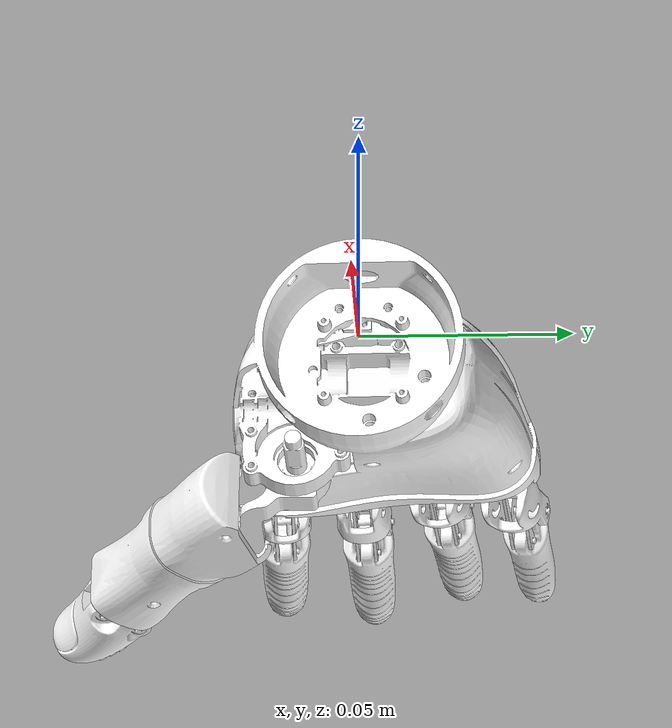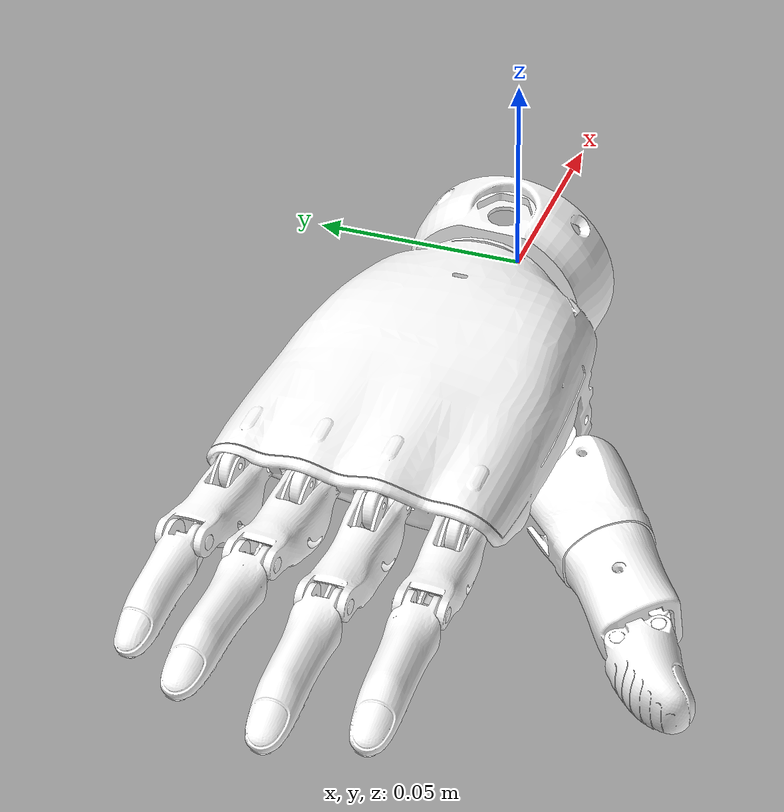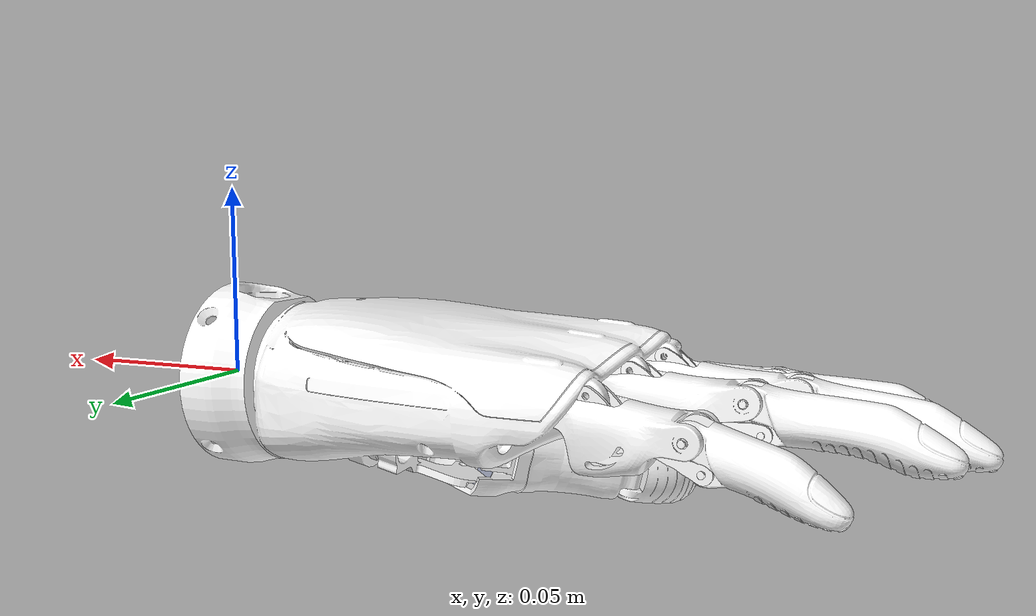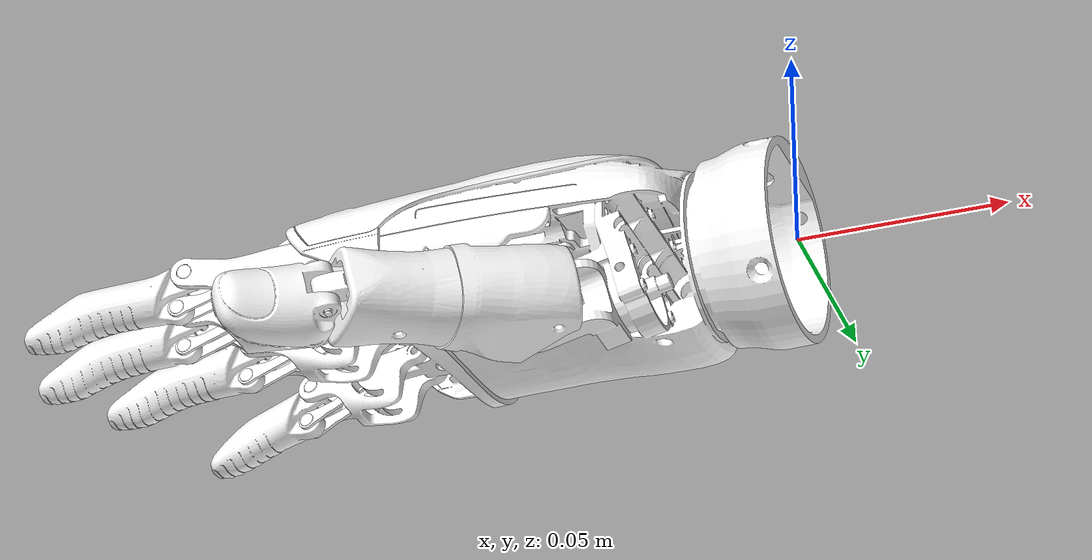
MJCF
<mujoco model="rohand_right">
  <compiler angle="radian"/>
  <asset>
    <mesh name="base_link" content_type="model/stl" file="../assets/meshes_r/base_link.STL"/>
    <mesh name="if_proximal_link" content_type="model/stl" file="../assets/meshes_r/if_proximal_link.STL"/>
    <mesh name="if_distal_link" content_type="model/stl" file="../assets/meshes_r/if_distal_link.STL"/>
    <mesh name="if_connecting_link" content_type="model/stl" file="../assets/meshes_r/if_connecting_link.STL"/>
    <mesh name="mf_proximal_link" content_type="model/stl" file="../assets/meshes_r/mf_proximal_link.STL"/>
    <mesh name="mf_distal_link" content_type="model/stl" file="../assets/meshes_r/mf_distal_link.STL"/>
    <mesh name="mf_connecting_link" content_type="model/stl" file="../assets/meshes_r/mf_connecting_link.STL"/>
    <mesh name="rf_proximal_link" content_type="model/stl" file="../assets/meshes_r/rf_proximal_link.STL"/>
    <mesh name="rf_distal_link" content_type="model/stl" file="../assets/meshes_r/rf_distal_link.STL"/>
    <mesh name="rf_connecting_link" content_type="model/stl" file="../assets/meshes_r/rf_connecting_link.STL"/>
    <mesh name="lf_proximal_link" content_type="model/stl" file="../assets/meshes_r/lf_proximal_link.STL"/>
    <mesh name="lf_distal_link" content_type="model/stl" file="../assets/meshes_r/lf_distal_link.STL"/>
    <mesh name="lf_connecting_link" content_type="model/stl" file="../assets/meshes_r/lf_connecting_link.STL"/>
    <mesh name="th_root_link" content_type="model/stl" file="../assets/meshes_r/th_root_link.STL"/>
    <mesh name="th_slider_connecting_link" content_type="model/stl" file="../assets/meshes_r/th_slider_connecting_link.STL"/>
    <mesh name="th_slider_link" content_type="model/stl" file="../assets/meshes_r/th_slider_link.STL"/>
    <mesh name="th_connecting_link" content_type="model/stl" file="../assets/meshes_r/th_connecting_link.STL"/>
    <mesh name="th_distal_link" content_type="model/stl" file="../assets/meshes_r/th_distal_link.STL"/>
    <mesh name="th_proximal_link" content_type="model/stl" file="../assets/meshes_r/th_proximal_link.STL"/>
  </asset>

  <worldbody>
    <body name="base_link" gravcomp="1">
      <geom type="mesh" rgba="1 1 1 1" mesh="base_link"/>
    </body>
    <body name="if_proximal_link" pos="-0.10885 -0.022559 0.0030149">
      <inertial pos="-0.0160095 -0.000349492 -0.00260444" quat="-0.0440493 0.736774 -0.0160061 0.674512" mass="0.0205198" diaginertia="2.03139e-07 1.89822e-07 7.44479e-08"/>
      <joint name="if_proximal_link" pos="0 0 0" axis="0.0358601 -0.995591 -0.0866701" damping="0.03"/>
      <geom type="mesh" rgba="1 1 1 1" mesh="if_proximal_link"/>
      <body name="if_distal_link" pos="-0.03264 -0.00084447 -0.00035932">
        <inertial pos="-0.0196284 -0.000640275 -0.00436104" quat="0.510597 0.471485 0.442294 0.566893" mass="0.0375163" diaginertia="4.17223e-07 4.15603e-07 5.91796e-08"/>
        <joint name="if_distal_link" pos="0 0 0" axis="-0.0358601 0.995591 0.0866701" damping="0.01"/>
        <geom type="mesh" rgba="1 1 1 1" mesh="if_distal_link"/>
      </body>
    </body>
    <body name="if_connecting_link" pos="-0.11575 -0.023152 0.006969">
      <inertial pos="-0.0140289 5.77054e-05 -0.00646747" quat="0.55484 0.417399 0.381139 0.610462" mass="0.00266926" diaginertia="1.97462e-08 1.95007e-08 2.63265e-10"/>
      <joint name="if_connecting_link" pos="0 0 0" axis="-0.0358601 0.995591 0.0866701"/>
      <geom type="mesh" rgba="1 1 1 1" mesh="if_connecting_link"/>
    </body>
    <body name="mf_proximal_link" pos="-0.11096 -0.0042498 0.0069142">
      <inertial pos="-0.0184905 0.000627935 -0.00413938" quat="0.0109854 0.704464 -0.0129311 0.709537" mass="0.0248817" diaginertia="2.93155e-07 2.84444e-07 9.05457e-08"/>
      <joint name="mf_proximal_link" pos="0 0 0" axis="-0.0341809 -0.999416 0.000165019" damping="0.03"/>
      <geom type="mesh" rgba="1 1 1 1" mesh="mf_proximal_link"/>
      <body name="mf_distal_link" pos="-0.037403 0.0015832 -0.0023459">
        <inertial pos="-0.0193516 0.000182975 -0.00549428" quat="0.560778 0.446398 0.435344 0.544731" mass="0.0375164" diaginertia="4.17224e-07 4.15603e-07 5.91808e-08"/>
        <joint name="mf_distal_link" pos="0 0 0" axis="0.0255421 0.999673 0.0010432" damping="0.01"/>
        <geom type="mesh" rgba="1 1 1 1" mesh="mf_distal_link"/>
      </body>
    </body>
    <body name="mf_connecting_link" pos="-0.11788 -0.0040127 0.010884">
      <inertial pos="-0.0159082 0.00054282 -0.00759651" quat="0.595699 0.402782 0.389337 0.575609" mass="0.00282843" diaginertia="2.82059e-08 2.79486e-08 2.76839e-10"/>
      <joint name="mf_connecting_link" pos="0 0 0" axis="0.0341809 0.999416 -0.000165019" />
      <geom type="mesh" rgba="1 1 1 1" mesh="mf_connecting_link"/>
    </body>
    <body name="rf_proximal_link" pos="-0.1076 0.013828 0.0062414">
      <inertial pos="-0.0159252 0.00166363 -0.0026149" quat="0.0351475 0.736054 -0.038331 0.674922" mass="0.0205195" diaginertia="2.03136e-07 1.89819e-07 7.44466e-08"/>
      <joint name="rf_proximal_link" pos="0 0 0" axis="-0.10384 -0.994594 -0.000157891" damping="0.03"/>
      <geom type="mesh" rgba="1 1 1 1" mesh="rf_proximal_link"/>
      <body name="rf_distal_link" pos="-0.032444 0.0036877 -0.00038717">
        <inertial pos="-0.0195758 0.00156976 -0.00435151" quat="0.56514 0.478573 0.43416 0.512923" mass="0.03751" diaginertia="4.17169e-07 4.15553e-07 5.91745e-08"/>
        <joint name="rf_distal_link" pos="0 0 0" axis="0.0953304 0.995444 0.00187041" damping="0.01"/>
        <geom type="mesh" rgba="1 1 1 1" mesh="rf_distal_link"/>
      </body>
    </body>
    <body name="rf_connecting_link" pos="-0.11448 0.014546 0.01021">
      <inertial pos="-0.0139417 0.00145667 -0.00649233" quat="0.613147 0.419493 0.377886 0.552521" mass="0.00266926" diaginertia="1.97462e-08 1.95007e-08 2.63265e-10"/>
      <joint name="rf_connecting_link" pos="0 0 0" axis="0.10384 0.994594 0.000157891"/>
      <geom type="mesh" rgba="1 1 1 1" mesh="rf_connecting_link"/>
    </body>
    <body name="lf_proximal_link" pos="-0.1033 0.031912 0.0039331">
      <inertial pos="-0.014206 0.00208862 -0.00334392" quat="0.088767 0.718403 -0.0296461 0.689303" mass="0.0183689" diaginertia="1.53265e-07 1.40962e-07 6.66244e-08"/>
      <joint name="lf_proximal_link" pos="0 0 0" axis="-0.1649 -0.982492 0.0867081" damping="0.03"/>
      <geom type="mesh" rgba="1 1 1 1" mesh="lf_proximal_link"/>
      <body name="lf_distal_link" pos="-0.028549 0.0048912 -0.00234">
        <inertial pos="-0.0138954 0.00139958 -0.00580135" quat="0.415901 0.516977 0.228122 0.712546" mass="0.0244289" diaginertia="1.50321e-07 1.4236e-07 4.07274e-08"/>
        <joint name="lf_distal_link" pos="0 0 0" axis="0.1649 0.982492 -0.0867081" damping="0.01"/>
        <geom type="mesh" rgba="1 1 1 1" mesh="lf_distal_link"/>
      </body>
    </body>
    <body name="lf_connecting_link" pos="-0.11007 0.033397 0.0078874">
      <inertial pos="-0.0116951 0.00131659 -0.00732304" quat="0.669493 0.366394 0.358832 0.537377" mass="0.00253789" diaginertia="1.512e-08 1.48906e-08 2.45782e-10"/>
      <joint name="lf_connecting_link" pos="0 0 0" axis="0.1649 0.982492 -0.0867081"/>
      <geom type="mesh" rgba="1 1 1 1" mesh="lf_connecting_link"/>
    </body>
    <body name="th_root_link" pos="-0.046829 -0.015748 -0.020109">
      <inertial pos="0.00233053 -0.00579711 -0.00109272" quat="0.396144 0.186971 0.566625 0.697888" mass="0.0195343" diaginertia="2.53752e-07 2.18568e-07 9.14519e-08"/>
      <joint name="th_root_link" pos="0 0 0" axis="0.974613 -0.0347511 0.221181" range="0 1.57" damping="0.05"/>
      <geom type="mesh" rgba="1 1 1 1" mesh="th_root_link"/>
      <body name="th_slider_connecting_link" pos="-0.012897 -0.014671 -0.013425">
        <inertial pos="-0.000608092 -0.00531317 0.00790312" quat="0.394853 0.48327 -0.489081 0.609378" mass="0.886531" diaginertia="1.50668e-09 1.35211e-09 1.63977e-10"/>
        <joint name="th_slider_connecting" pos="0 0 0" axis="0.22103 -0.00824012 -0.975232" damping="0.03"/>
        <geom type="mesh" rgba="0.72549 0.752941 0.854902 1" mesh="th_slider_connecting_link"/>
        <body name="th_slider_link" pos="0.00223101 -0.0107548 0.000596516">
          <inertial pos="-0.0161459 -0.011122 0.00443117" quat="0.380354 0.236453 0.599548 0.663297" mass="0.03486787" diaginertia="6.85655e-08 5.52372e-08 1.4602e-08"/>
          <joint name="th_slider_link" pos="0 0 0" axis="-0.22103 0.00824009 0.975232" damping="0.05"/>
          <geom type="mesh" rgba="1 1 1 1" mesh="th_slider_link"/>
          <body name="th_connecting_link" pos="-0.026064 -0.020473 0.0019543">
            <inertial pos="-0.00506187 -0.0024009 -0.000769925" quat="0.460757 0.327213 0.540229 0.623528" mass="0.0229811" diaginertia="3.52265e-09 2.83668e-09 1.61237e-09"/>
            <joint name="th_connecting_link" pos="0 0 0" axis="0.22103 -0.00824012 -0.975232" range="-0.37 0" damping="0.05"/>
            <geom type="mesh" rgba="1 1 1 1" mesh="th_connecting_link"/>
            <body name="th_distal_link" pos="-0.009638 -0.0033627 0.0048162">
              <inertial pos="-0.00989932 -0.00175247 -0.00889095" quat="0.376033 0.231636 0.602302 0.664963" mass="0.1860659" diaginertia="2.89067e-05 2.59243e-05 1.67756e-05"/>
              <joint name="th_distal_link" pos="0 0 0" axis="0.22103 -0.00824002 -0.975232" />
              <geom type="mesh" rgba="1 1 1 1" mesh="th_distal_link"/>
            </body>
          </body>
          <body name="th_proximal_link" pos="0.0010604 0.0010831 0.0018699">
            <inertial pos="-0.0140056 -0.0064035 0.00323557" quat="-0.153549 0.604421 0.19881 0.756024" mass="0.07646402" diaginertia="2.12767e-04 1.86451e-04 3.80981e-05"/>
            <joint name="th_proximal_link" pos="0 0 0" axis="-0.78534 -0.59441 -0.17297" type="slide" damping="0.5"/>
            <geom type="mesh" rgba="1 1 1 1" mesh="th_proximal_link"/>
          </body>
        </body>
      </body>
    </body>
  </worldbody>

  <contact>
    <exclude body1="base_link" body2="if_proximal_link"/>
    <exclude body1="base_link" body2="if_distal_link"/>
    <exclude body1="base_link" body2="if_connecting_link"/>
    <exclude body1="if_connecting_link" body2="if_proximal_link"/>
    <exclude body1="if_connecting_link" body2="if_distal_link"/>
    <exclude body1="if_proximal_link" body2="if_distal_link"/>
    <exclude body1="base_link" body2="mf_proximal_link"/>
    <exclude body1="base_link" body2="mf_distal_link"/>
    <exclude body1="base_link" body2="mf_connecting_link"/>
    <exclude body1="mf_connecting_link" body2="mf_proximal_link"/>
    <exclude body1="mf_connecting_link" body2="mf_distal_link"/>
    <exclude body1="mf_proximal_link" body2="mf_distal_link"/>
    <exclude body1="base_link" body2="rf_proximal_link"/>
    <exclude body1="base_link" body2="rf_distal_link"/>
    <exclude body1="base_link" body2="rf_connecting_link"/>
    <exclude body1="rf_connecting_link" body2="rf_proximal_link"/>
    <exclude body1="rf_connecting_link" body2="rf_distal_link"/>
    <exclude body1="rf_proximal_link" body2="rf_distal_link"/>
    <exclude body1="base_link" body2="lf_proximal_link"/>
    <exclude body1="base_link" body2="lf_distal_link"/>
    <exclude body1="base_link" body2="lf_connecting_link"/>
    <exclude body1="lf_connecting_link" body2="lf_proximal_link"/>
    <exclude body1="lf_connecting_link" body2="lf_distal_link"/>
    <exclude body1="lf_proximal_link" body2="lf_distal_link"/>
    <exclude body1="th_root_link" body2="base_link"/>
    <exclude body1="th_root_link" body2="th_slider_link"/>
    <exclude body1="th_root_link" body2="th_connecting_link"/>
    <exclude body1="th_root_link" body2="th_distal_link"/>
    <exclude body1="th_root_link" body2="th_slider_link"/>
    <exclude body1="th_root_link" body2="th_proximal_link"/>
    <exclude body1="th_root_link" body2="th_slider_connecting_link"/>
    <exclude body1="th_slider_connecting_link" body2="base_link"/>
    <exclude body1="th_slider_connecting_link" body2="th_slider_link"/>
    <exclude body1="th_slider_connecting_link" body2="th_connecting_link"/>
    <exclude body1="th_slider_connecting_link" body2="th_distal_link"/>
    <exclude body1="th_slider_connecting_link" body2="th_proximal_link"/>
    <exclude body1="th_slider_link" body2="base_link"/>
    <exclude body1="th_slider_link" body2="th_connecting_link"/>
    <exclude body1="th_slider_link" body2="th_distal_link"/>
    <exclude body1="th_slider_link" body2="th_proximal_link"/>
    <exclude body1="th_connecting_link" body2="base_link"/>
    <exclude body1="th_connecting_link" body2="th_distal_link"/>
    <exclude body1="th_connecting_link" body2="th_proximal_link"/>
    <exclude body1="th_distal_link" body2="base_link"/>
    <exclude body1="th_distal_link" body2="th_proximal_link"/>
    <exclude body1="th_proximal_link" body2="base_link"/>
  </contact>

  <equality>
    <connect body1="if_distal_link" body2="if_connecting_link" anchor="-0.0028 0.001 -0.007" solimp="0.95 0.99 0.001" solref="0.005 1"/>
    <connect body1="mf_distal_link" body2="mf_connecting_link" anchor="-0.0028 0.001 -0.00734" solimp="0.95 0.99 0.001" solref="0.005 1"/>
    <connect body1="rf_distal_link" body2="rf_connecting_link" anchor="-0.0028 0.001 -0.00734" solimp="0.95 0.99 0.001" solref="0.005 1"/>
    <connect body1="lf_distal_link" body2="lf_connecting_link" anchor="-0.0028 0.001 -0.007" solimp="0.95 0.99 0.001" solref="0.005 1"/>
    <connect body1="th_proximal_link" body2="th_root_link" anchor="0.0045 0.008 0.018" solimp="0.8 0.99 0.001" solref="0.001 1"/>
    <connect body1="th_distal_link" body2="th_proximal_link" anchor="-0.006 0.008 -0.001" solimp="0.99 0.99 0.001" solref="0.0005 1"/>
  </equality>

  <actuator>
    <position name="index_finger" joint="if_proximal_link" kp="1" ctrlrange="0 1.57"/>
    <position name="middle_finger" joint="mf_proximal_link" kp="1" ctrlrange="0 1.57"/>
    <position name="ring_finger" joint="rf_proximal_link" kp="1" ctrlrange="0 1.57"/>
    <position name="little_finger" joint="lf_proximal_link" kp="1" ctrlrange="0 1.5 "/>
    <position name="thumb_root" joint="th_root_link" kp="1" ctrlrange="0 1.57"/>
    <position name="thumb" joint="th_slider_connecting" kp="1" ctrlrange="0 1.3"/>
  </actuator>
</mujoco>
